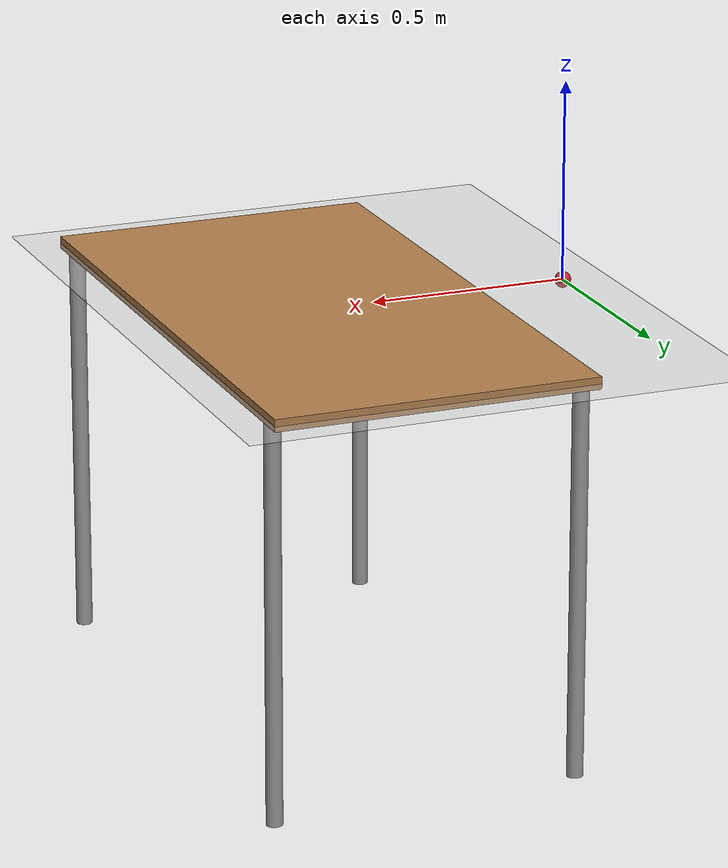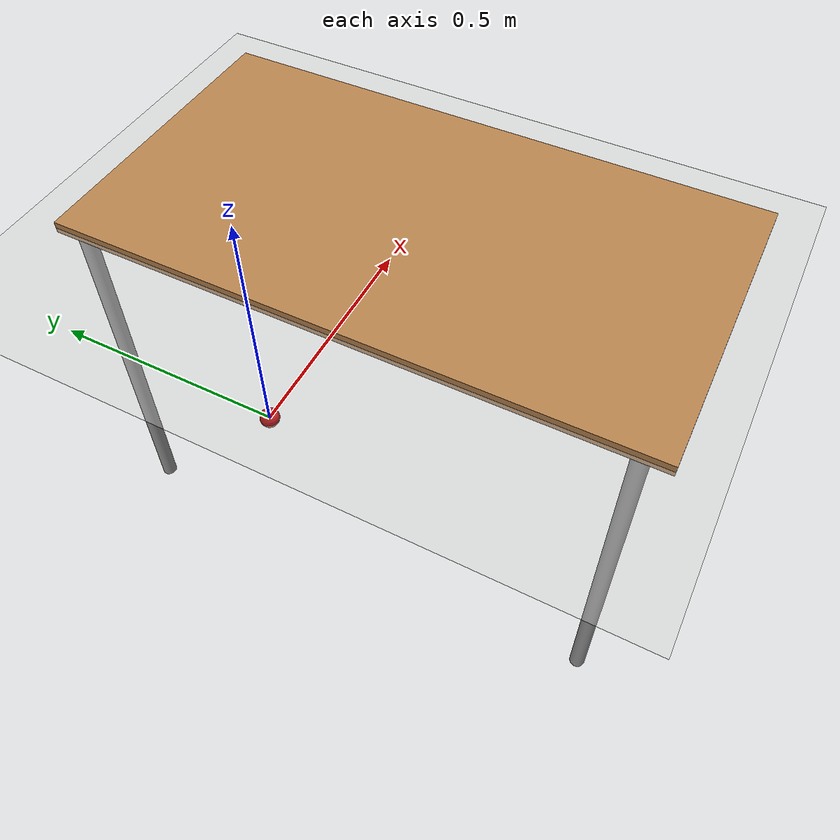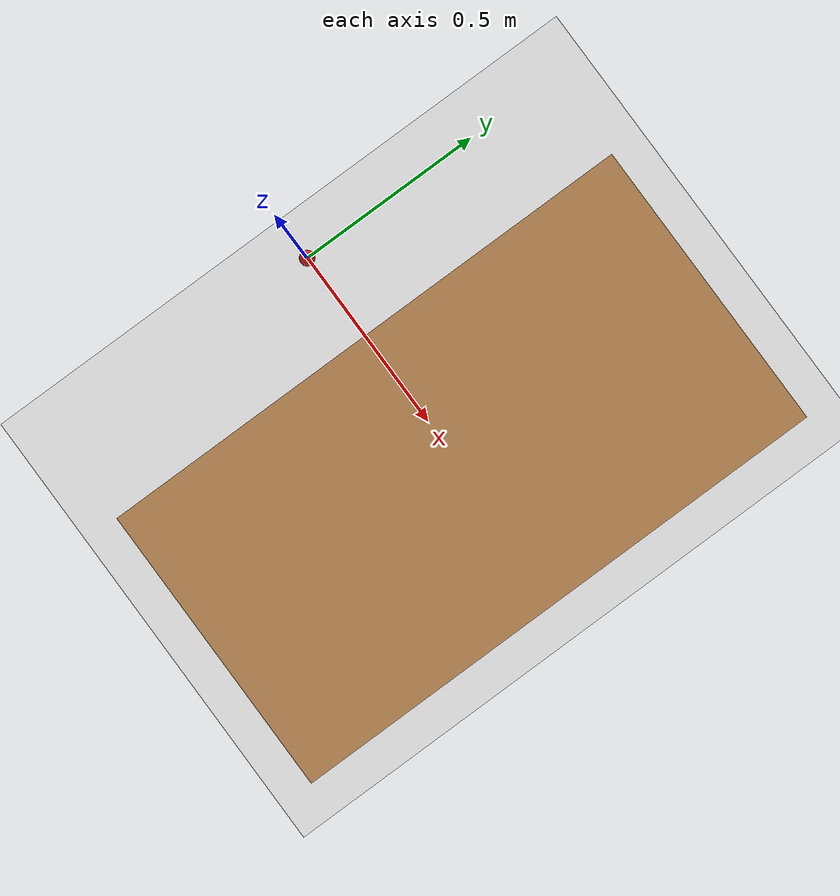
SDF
<sdf version="1.6">
 <world name="default">
  <light name="sun" type="directional">
   <pose>0 0 10 0 -0 0</pose>
   <diffuse>0.8 0.8 0.8 1</diffuse>
   <specular>0.2 0.2 0.2 1</specular>
   <attenuation>
    <range>1000</range>
    <constant>0.9</constant>
    <linear>0.01</linear>
    <quadratic>0.001</quadratic>
   </attenuation>
   <direction>-0.5 0.1 -0.9</direction>
  </light>
  <model name="ground_plane">
   <static>1</static>
   <link name="link">
    <collision name="collision">
     <geometry><plane><normal>0 0 1</normal><size>100 100</size></plane></geometry>
     <surface>
      <contact><collide_bitmask>65535</collide_bitmask></contact>
      <friction><ode><mu>100</mu><mu2>50</mu2></ode></friction>
     </surface>
    </collision>
    <visual name="visual">
     <cast_shadows>0</cast_shadows>
     <geometry><plane><normal>0 0 1</normal><size>100 100</size></plane></geometry>
     <material>
      <script><uri>file://media/materials/scripts/gazebo.material</uri><name>Gazebo/Grey</name></script>
     </material>
    </visual>
   </link>
  </model>
  <model name="wrist_point">
   <link name="link">
    <visual name="visual">
     <cast_shadows>0</cast_shadows>
     <geometry><sphere><radius>.02</radius></sphere></geometry>
     <material>
      <script><uri>file://media/materials/scripts/gazebo.material</uri><name>Gazebo/Red</name></script>
     </material>
    </visual>
    <gravity>0</gravity>
   </link>
  </model>
  <model name="elbow_point">
   <link name="link">
    <visual name="visual">
     <cast_shadows>0</cast_shadows>
     <geometry><sphere><radius>.02</radius></sphere></geometry>
     <material>
      <script><uri>file://media/materials/scripts/gazebo.material</uri><name>Gazebo/Orange</name></script>
     </material>
    </visual>
    <gravity>0</gravity>
   </link>
  </model>
  <gravity>0 0 -9.8</gravity>
  <magnetic_field>6e-06 2.3e-05 -4.2e-05</magnetic_field>
  <atmosphere type="adiabatic"/>
  <physics name="default_physics" default="0" type="ode">
   <max_step_size>0.001</max_step_size>
   <real_time_factor>1</real_time_factor>
   <real_time_update_rate>1000</real_time_update_rate>
  </physics>
  <scene><ambient>0.4 0.4 0.4 1</ambient><background>0.7 0.7 0.7 1</background><shadows>1</shadows></scene>
  <audio><device>default</device></audio>
  <spherical_coordinates>
   <surface_model>EARTH_WGS84</surface_model>
   <latitude_deg>0</latitude_deg>
   <longitude_deg>0</longitude_deg>
   <elevation>0</elevation>
   <heading_deg>0</heading_deg>
  </spherical_coordinates>
  <model name="table">
   <static>1</static>
   <link name="link">
    <collision name="surface">
     <pose>0 0 1 0 -0 0</pose>
     <geometry><box><size>1.5 0.8 0.03</size></box></geometry>
     <surface><friction><ode><mu>0.6</mu><mu2>0.6</mu2></ode></friction></surface>
    </collision>
    <visual name="visual1">
     <pose>0 0 1 0 -0 0</pose>
     <geometry><box><size>1.5 0.8 0.03</size></box></geometry>
     <material>
      <script><uri>file://media/materials/scripts/gazebo.material</uri><name>Gazebo/Wood</name></script>
     </material>
    </visual>
    <collision name="front_left_leg">
     <pose>0.68 0.38 0.5 0 -0 0</pose>
     <geometry><cylinder><radius>0.02</radius><length>1</length></cylinder></geometry>
    </collision>
    <visual name="front_left_leg">
     <pose>0.68 0.38 0.5 0 -0 0</pose>
     <geometry><cylinder><radius>0.02</radius><length>1</length></cylinder></geometry>
     <material>
      <script><uri>file://media/materials/scripts/gazebo.material</uri><name>Gazebo/Grey</name></script>
     </material>
    </visual>
    <collision name="front_right_leg">
     <pose>0.68 -0.38 0.5 0 -0 0</pose>
     <geometry><cylinder><radius>0.02</radius><length>1</length></cylinder></geometry>
    </collision>
    <visual name="front_right_leg">
     <pose>0.68 -0.38 0.5 0 -0 0</pose>
     <geometry><cylinder><radius>0.02</radius><length>1</length></cylinder></geometry>
     <material>
      <script><uri>file://media/materials/scripts/gazebo.material</uri><name>Gazebo/Grey</name></script>
     </material>
    </visual>
    <collision name="back_right_leg">
     <pose>-0.68 -0.38 0.5 0 -0 0</pose>
     <geometry><cylinder><radius>0.02</radius><length>1</length></cylinder></geometry>
    </collision>
    <visual name="back_right_leg">
     <pose>-0.68 -0.38 0.5 0 -0 0</pose>
     <geometry><cylinder><radius>0.02</radius><length>1</length></cylinder></geometry>
     <material>
      <script><uri>file://media/materials/scripts/gazebo.material</uri><name>Gazebo/Grey</name></script>
     </material>
    </visual>
    <collision name="back_left_leg">
     <pose>-0.68 0.38 0.5 0 -0 0</pose>
     <geometry><cylinder><radius>0.02</radius><length>1</length></cylinder></geometry>
    </collision>
    <visual name="back_left_leg">
     <pose>-0.68 0.38 0.5 0 -0 0</pose>
     <geometry><cylinder><radius>0.02</radius><length>1</length></cylinder></geometry>
     <material>
      <script><uri>file://media/materials/scripts/gazebo.material</uri><name>Gazebo/Grey</name></script>
     </material>
    </visual>
   </link>
   <pose>0.64 0.0 -1.0 0 0 -1.57079632679</pose>
  </model>
 </world>
</sdf>
